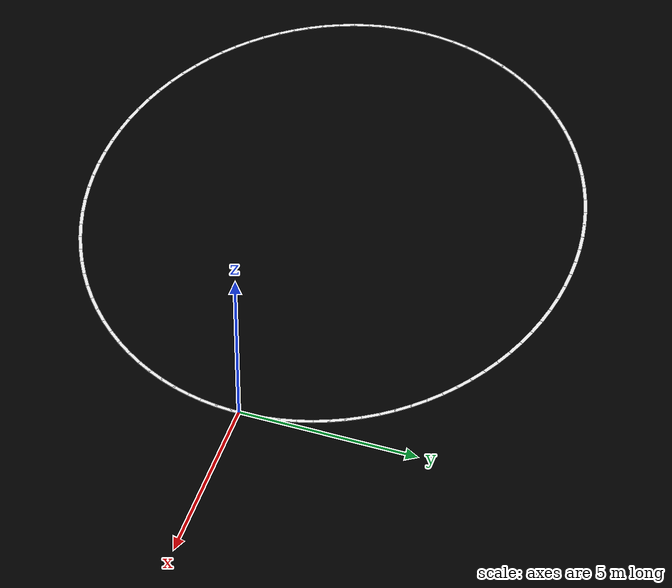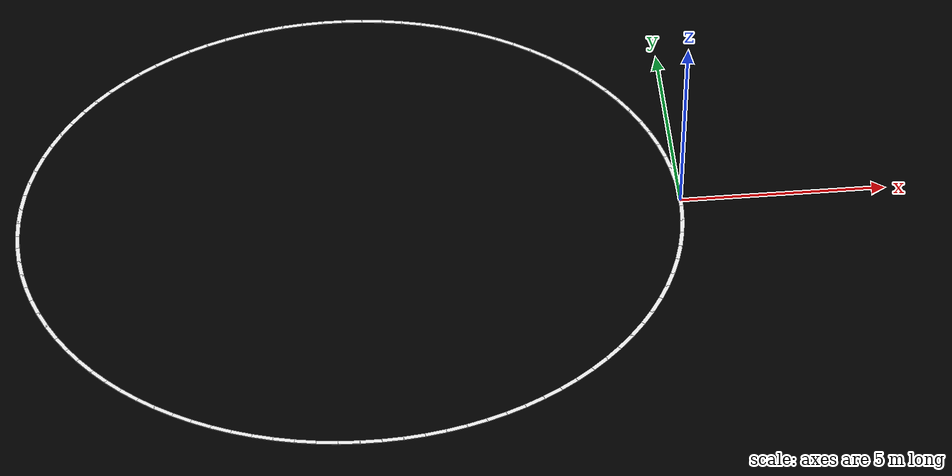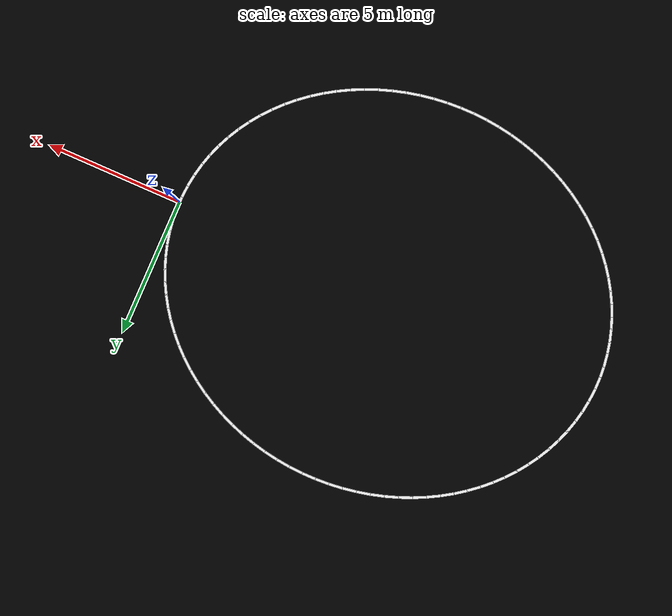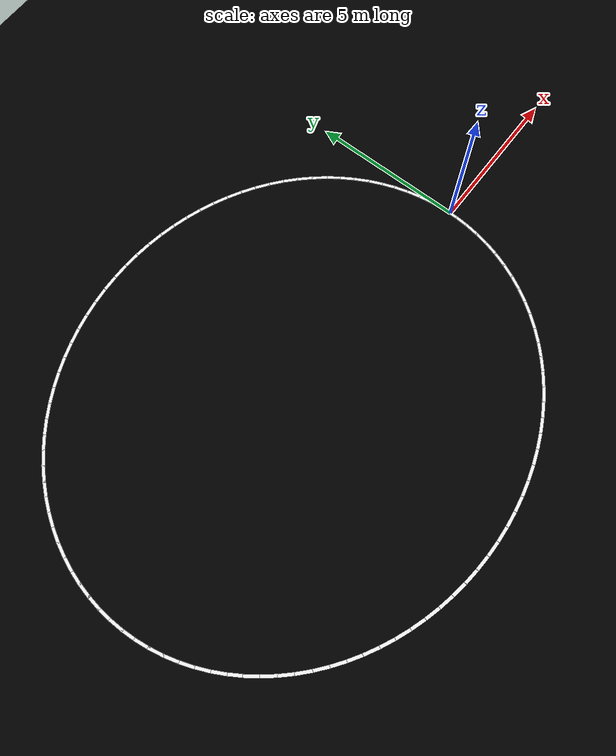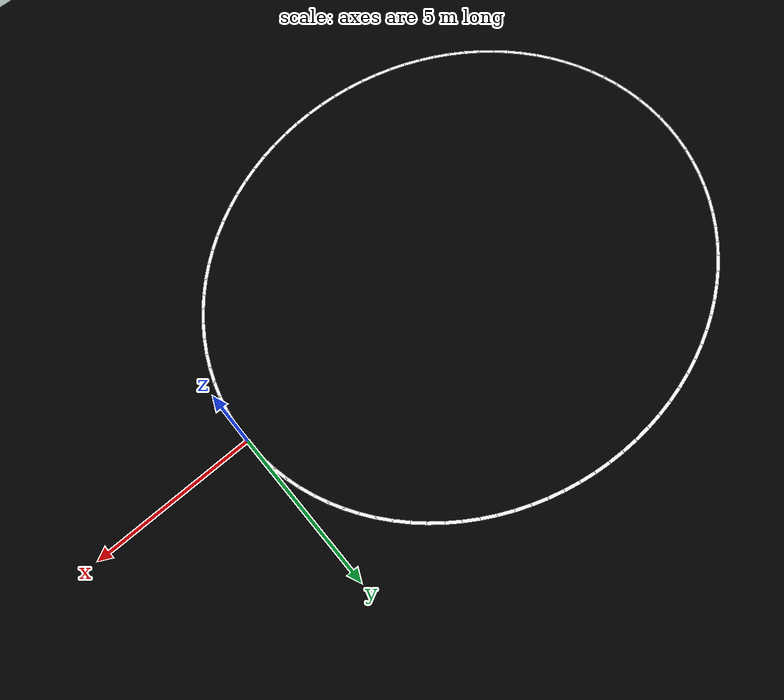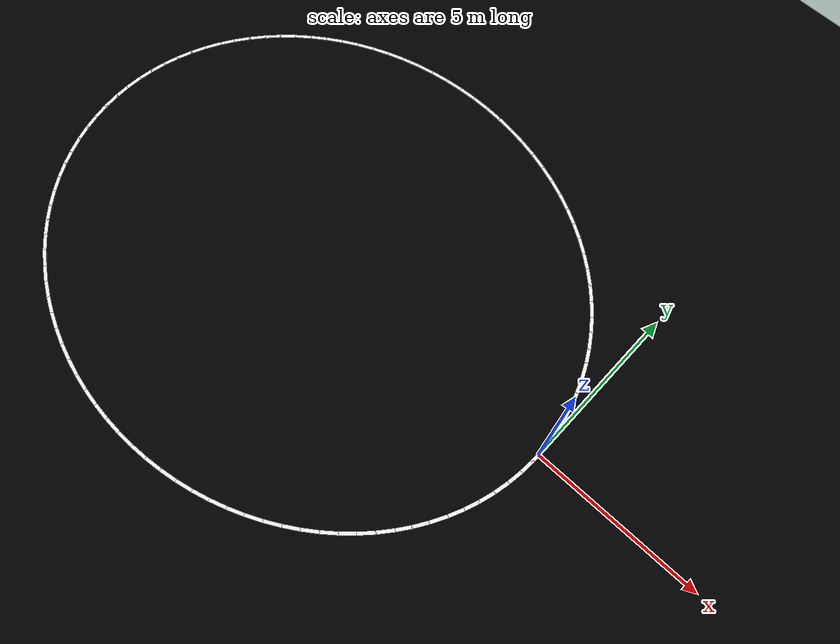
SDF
<?xml version="1.0" encoding="UTF-8"?>
<sdf version="1.9">
  <world name="line_following_track">
    <physics type="ode">
      <max_step_size>0.004</max_step_size>
      <real_time_factor>1.0</real_time_factor>
      <real_time_update_rate>250</real_time_update_rate>
    </physics>
    <gravity>0 0 -9.8</gravity>
    <magnetic_field>6e-06 2.3e-05 -4.2e-05</magnetic_field>
    <atmosphere type="adiabatic"/>
    <scene>
      <grid>false</grid>
      <ambient>0.4 0.4 0.4 1</ambient>
      <background>0.7 0.7 0.7 1</background>
      <shadows>true</shadows>
    </scene>

    <model name="ground_plane">
      <static>true</static>
      <link name="link">
        <collision name="collision">
          <geometry>
            <plane>
              <normal>0 0 1</normal>
              <size>1 1</size>
            </plane>
          </geometry>
          <surface>
            <friction>
              <ode/>
            </friction>
            <bounce/>
            <contact/>
          </surface>
        </collision>
        <visual name="visual">
          <geometry>
            <plane>
              <normal>0 0 1</normal>
              <size>500 500</size>
            </plane>
          </geometry>
          <material>
            <ambient>0 0 0 1</ambient>
            <diffuse>0 0 0 1</diffuse>
          </material>
        </visual>
        <pose>0 0 0 0 -0 0</pose>
        <inertial>
          <pose>0 0 0 0 -0 0</pose>
          <mass>1</mass>
          <inertia>
            <ixx>1</ixx>
            <ixy>0</ixy>
            <ixz>0</ixz>
            <iyy>1</iyy>
            <iyz>0</iyz>
            <izz>1</izz>
          </inertia>
        </inertial>
        <enable_wind>false</enable_wind>
      </link>
      <pose>0 0 0 0 -0 0</pose>
      <self_collide>false</self_collide>
    </model>

    <model name="track_seg_00"><static>true</static><link name="link"><visual name="visual"><geometry><box><size>0.5 0.1 0.01</size></box></geometry><material><ambient>1 1 1 1</ambient><diffuse>1 1 1 1</diffuse></material><pose>0.000 0.000 0.005 0 0 1.571</pose></visual></link></model>
    <model name="track_seg_01"><static>true</static><link name="link"><visual name="visual"><geometry><box><size>0.5 0.1 0.01</size></box></geometry><material><ambient>1 1 1 1</ambient><diffuse>1 1 1 1</diffuse></material><pose>-0.016 0.440 0.005 0 0 1.643</pose></visual></link></model>
    <model name="track_seg_02"><static>true</static><link name="link"><visual name="visual"><geometry><box><size>0.5 0.1 0.01</size></box></geometry><material><ambient>1 1 1 1</ambient><diffuse>1 1 1 1</diffuse></material><pose>-0.063 0.877 0.005 0 0 1.714</pose></visual></link></model>
    <model name="track_seg_03"><static>true</static><link name="link"><visual name="visual"><geometry><box><size>0.5 0.1 0.01</size></box></geometry><material><ambient>1 1 1 1</ambient><diffuse>1 1 1 1</diffuse></material><pose>-0.142 1.312 0.005 0 0 1.785</pose></visual></link></model>
    <model name="track_seg_04"><static>true</static><link name="link"><visual name="visual"><geometry><box><size>0.5 0.1 0.01</size></box></geometry><material><ambient>1 1 1 1</ambient><diffuse>1 1 1 1</diffuse></material><pose>-0.251 1.741 0.005 0 0 1.856</pose></visual></link></model>
    <model name="track_seg_05"><static>true</static><link name="link"><visual name="visual"><geometry><box><size>0.5 0.1 0.01</size></box></geometry><material><ambient>1 1 1 1</ambient><diffuse>1 1 1 1</diffuse></material><pose>-0.392 2.163 0.005 0 0 1.926</pose></visual></link></model>
    <model name="track_seg_06"><static>true</static><link name="link"><visual name="visual"><geometry><box><size>0.5 0.1 0.01</size></box></geometry><material><ambient>1 1 1 1</ambient><diffuse>1 1 1 1</diffuse></material><pose>-0.562 2.577 0.005 0 0 1.996</pose></visual></link></model>
    <model name="track_seg_07"><static>true</static><link name="link"><visual name="visual"><geometry><box><size>0.5 0.1 0.01</size></box></geometry><material><ambient>1 1 1 1</ambient><diffuse>1 1 1 1</diffuse></material><pose>-0.761 2.980 0.005 0 0 2.064</pose></visual></link></model>
    <model name="track_seg_08"><static>true</static><link name="link"><visual name="visual"><geometry><box><size>0.5 0.1 0.01</size></box></geometry><material><ambient>1 1 1 1</ambient><diffuse>1 1 1 1</diffuse></material><pose>-0.990 3.372 0.005 0 0 2.132</pose></visual></link></model>
    <model name="track_seg_09"><static>true</static><link name="link"><visual name="visual"><geometry><box><size>0.5 0.1 0.01</size></box></geometry><material><ambient>1 1 1 1</ambient><diffuse>1 1 1 1</diffuse></material><pose>-1.245 3.751 0.005 0 0 2.198</pose></visual></link></model>
    <model name="track_seg_10"><static>true</static><link name="link"><visual name="visual"><geometry><box><size>0.5 0.1 0.01</size></box></geometry><material><ambient>1 1 1 1</ambient><diffuse>1 1 1 1</diffuse></material><pose>-1.528 4.114 0.005 0 0 2.264</pose></visual></link></model>
    <model name="track_seg_11"><static>true</static><link name="link"><visual name="visual"><geometry><box><size>0.5 0.1 0.01</size></box></geometry><material><ambient>1 1 1 1</ambient><diffuse>1 1 1 1</diffuse></material><pose>-1.836 4.462 0.005 0 0 2.328</pose></visual></link></model>
    <model name="track_seg_12"><static>true</static><link name="link"><visual name="visual"><geometry><box><size>0.5 0.1 0.01</size></box></geometry><material><ambient>1 1 1 1</ambient><diffuse>1 1 1 1</diffuse></material><pose>-2.168 4.792 0.005 0 0 2.391</pose></visual></link></model>
    <model name="track_seg_13"><static>true</static><link name="link"><visual name="visual"><geometry><box><size>0.5 0.1 0.01</size></box></geometry><material><ambient>1 1 1 1</ambient><diffuse>1 1 1 1</diffuse></material><pose>-2.524 5.103 0.005 0 0 2.454</pose></visual></link></model>
    <model name="track_seg_14"><static>true</static><link name="link"><visual name="visual"><geometry><box><size>0.5 0.1 0.01</size></box></geometry><material><ambient>1 1 1 1</ambient><diffuse>1 1 1 1</diffuse></material><pose>-2.901 5.394 0.005 0 0 2.515</pose></visual></link></model>
    <model name="track_seg_15"><static>true</static><link name="link"><visual name="visual"><geometry><box><size>0.5 0.1 0.01</size></box></geometry><material><ambient>1 1 1 1</ambient><diffuse>1 1 1 1</diffuse></material><pose>-3.298 5.663 0.005 0 0 2.575</pose></visual></link></model>
    <model name="track_seg_16"><static>true</static><link name="link"><visual name="visual"><geometry><box><size>0.5 0.1 0.01</size></box></geometry><material><ambient>1 1 1 1</ambient><diffuse>1 1 1 1</diffuse></material><pose>-3.713 5.910 0.005 0 0 2.635</pose></visual></link></model>
    <model name="track_seg_17"><static>true</static><link name="link"><visual name="visual"><geometry><box><size>0.5 0.1 0.01</size></box></geometry><material><ambient>1 1 1 1</ambient><diffuse>1 1 1 1</diffuse></material><pose>-4.146 6.134 0.005 0 0 2.693</pose></visual></link></model>
    <model name="track_seg_18"><static>true</static><link name="link"><visual name="visual"><geometry><box><size>0.5 0.1 0.01</size></box></geometry><material><ambient>1 1 1 1</ambient><diffuse>1 1 1 1</diffuse></material><pose>-4.594 6.334 0.005 0 0 2.751</pose></visual></link></model>
    <model name="track_seg_19"><static>true</static><link name="link"><visual name="visual"><geometry><box><size>0.5 0.1 0.01</size></box></geometry><material><ambient>1 1 1 1</ambient><diffuse>1 1 1 1</diffuse></material><pose>-5.055 6.508 0.005 0 0 2.808</pose></visual></link></model>
    <model name="track_seg_20"><static>true</static><link name="link"><visual name="visual"><geometry><box><size>0.5 0.1 0.01</size></box></geometry><material><ambient>1 1 1 1</ambient><diffuse>1 1 1 1</diffuse></material><pose>-5.528 6.657 0.005 0 0 2.865</pose></visual></link></model>
    <model name="track_seg_21"><static>true</static><link name="link"><visual name="visual"><geometry><box><size>0.5 0.1 0.01</size></box></geometry><material><ambient>1 1 1 1</ambient><diffuse>1 1 1 1</diffuse></material><pose>-6.010 6.780 0.005 0 0 2.921</pose></visual></link></model>
    <model name="track_seg_22"><static>true</static><link name="link"><visual name="visual"><geometry><box><size>0.5 0.1 0.01</size></box></geometry><material><ambient>1 1 1 1</ambient><diffuse>1 1 1 1</diffuse></material><pose>-6.501 6.876 0.005 0 0 2.976</pose></visual></link></model>
    <model name="track_seg_23"><static>true</static><link name="link"><visual name="visual"><geometry><box><size>0.5 0.1 0.01</size></box></geometry><material><ambient>1 1 1 1</ambient><diffuse>1 1 1 1</diffuse></material><pose>-6.997 6.945 0.005 0 0 3.032</pose></visual></link></model>
    <model name="track_seg_24"><static>true</static><link name="link"><visual name="visual"><geometry><box><size>0.5 0.1 0.01</size></box></geometry><material><ambient>1 1 1 1</ambient><diffuse>1 1 1 1</diffuse></material><pose>-7.498 6.986 0.005 0 0 3.087</pose></visual></link></model>
    <model name="track_seg_25"><static>true</static><link name="link"><visual name="visual"><geometry><box><size>0.5 0.1 0.01</size></box></geometry><material><ambient>1 1 1 1</ambient><diffuse>1 1 1 1</diffuse></material><pose>-8.000 7.000 0.005 0 0 3.142</pose></visual></link></model>
    <model name="track_seg_26"><static>true</static><link name="link"><visual name="visual"><geometry><box><size>0.5 0.1 0.01</size></box></geometry><material><ambient>1 1 1 1</ambient><diffuse>1 1 1 1</diffuse></material><pose>-8.502 6.986 0.005 0 0 -3.087</pose></visual></link></model>
    <model name="track_seg_27"><static>true</static><link name="link"><visual name="visual"><geometry><box><size>0.5 0.1 0.01</size></box></geometry><material><ambient>1 1 1 1</ambient><diffuse>1 1 1 1</diffuse></material><pose>-9.003 6.945 0.005 0 0 -3.032</pose></visual></link></model>
    <model name="track_seg_28"><static>true</static><link name="link"><visual name="visual"><geometry><box><size>0.5 0.1 0.01</size></box></geometry><material><ambient>1 1 1 1</ambient><diffuse>1 1 1 1</diffuse></material><pose>-9.499 6.876 0.005 0 0 -2.976</pose></visual></link></model>
    <model name="track_seg_29"><static>true</static><link name="link"><visual name="visual"><geometry><box><size>0.5 0.1 0.01</size></box></geometry><material><ambient>1 1 1 1</ambient><diffuse>1 1 1 1</diffuse></material><pose>-9.990 6.780 0.005 0 0 -2.921</pose></visual></link></model>
    <model name="track_seg_30"><static>true</static><link name="link"><visual name="visual"><geometry><box><size>0.5 0.1 0.01</size></box></geometry><material><ambient>1 1 1 1</ambient><diffuse>1 1 1 1</diffuse></material><pose>-10.472 6.657 0.005 0 0 -2.865</pose></visual></link></model>
    <model name="track_seg_31"><static>true</static><link name="link"><visual name="visual"><geometry><box><size>0.5 0.1 0.01</size></box></geometry><material><ambient>1 1 1 1</ambient><diffuse>1 1 1 1</diffuse></material><pose>-10.945 6.508 0.005 0 0 -2.808</pose></visual></link></model>
    <model name="track_seg_32"><static>true</static><link name="link"><visual name="visual"><geometry><box><size>0.5 0.1 0.01</size></box></geometry><material><ambient>1 1 1 1</ambient><diffuse>1 1 1 1</diffuse></material><pose>-11.406 6.334 0.005 0 0 -2.751</pose></visual></link></model>
    <model name="track_seg_33"><static>true</static><link name="link"><visual name="visual"><geometry><box><size>0.5 0.1 0.01</size></box></geometry><material><ambient>1 1 1 1</ambient><diffuse>1 1 1 1</diffuse></material><pose>-11.854 6.134 0.005 0 0 -2.693</pose></visual></link></model>
    <model name="track_seg_34"><static>true</static><link name="link"><visual name="visual"><geometry><box><size>0.5 0.1 0.01</size></box></geometry><material><ambient>1 1 1 1</ambient><diffuse>1 1 1 1</diffuse></material><pose>-12.287 5.910 0.005 0 0 -2.635</pose></visual></link></model>
    <model name="track_seg_35"><static>true</static><link name="link"><visual name="visual"><geometry><box><size>0.5 0.1 0.01</size></box></geometry><material><ambient>1 1 1 1</ambient><diffuse>1 1 1 1</diffuse></material><pose>-12.702 5.663 0.005 0 0 -2.575</pose></visual></link></model>
    <model name="track_seg_36"><static>true</static><link name="link"><visual name="visual"><geometry><box><size>0.5 0.1 0.01</size></box></geometry><material><ambient>1 1 1 1</ambient><diffuse>1 1 1 1</diffuse></material><pose>-13.099 5.394 0.005 0 0 -2.515</pose></visual></link></model>
    <model name="track_seg_37"><static>true</static><link name="link"><visual name="visual"><geometry><box><size>0.5 0.1 0.01</size></box></geometry><material><ambient>1 1 1 1</ambient><diffuse>1 1 1 1</diffuse></material><pose>-13.476 5.103 0.005 0 0 -2.454</pose></visual></link></model>
    <model name="track_seg_38"><static>true</static><link name="link"><visual name="visual"><geometry><box><size>0.5 0.1 0.01</size></box></geometry><material><ambient>1 1 1 1</ambient><diffuse>1 1 1 1</diffuse></material><pose>-13.832 4.792 0.005 0 0 -2.391</pose></visual></link></model>
    <model name="track_seg_39"><static>true</static><link name="link"><visual name="visual"><geometry><box><size>0.5 0.1 0.01</size></box></geometry><material><ambient>1 1 1 1</ambient><diffuse>1 1 1 1</diffuse></material><pose>-14.164 4.462 0.005 0 0 -2.328</pose></visual></link></model>
    <model name="track_seg_40"><static>true</static><link name="link"><visual name="visual"><geometry><box><size>0.5 0.1 0.01</size></box></geometry><material><ambient>1 1 1 1</ambient><diffuse>1 1 1 1</diffuse></material><pose>-14.472 4.114 0.005 0 0 -2.264</pose></visual></link></model>
    <model name="track_seg_41"><static>true</static><link name="link"><visual name="visual"><geometry><box><size>0.5 0.1 0.01</size></box></geometry><material><ambient>1 1 1 1</ambient><diffuse>1 1 1 1</diffuse></material><pose>-14.755 3.751 0.005 0 0 -2.198</pose></visual></link></model>
    <model name="track_seg_42"><static>true</static><link name="link"><visual name="visual"><geometry><box><size>0.5 0.1 0.01</size></box></geometry><material><ambient>1 1 1 1</ambient><diffuse>1 1 1 1</diffuse></material><pose>-15.010 3.372 0.005 0 0 -2.132</pose></visual></link></model>
    <model name="track_seg_43"><static>true</static><link name="link"><visual name="visual"><geometry><box><size>0.5 0.1 0.01</size></box></geometry><material><ambient>1 1 1 1</ambient><diffuse>1 1 1 1</diffuse></material><pose>-15.239 2.980 0.005 0 0 -2.064</pose></visual></link></model>
    <model name="track_seg_44"><static>true</static><link name="link"><visual name="visual"><geometry><box><size>0.5 0.1 0.01</size></box></geometry><material><ambient>1 1 1 1</ambient><diffuse>1 1 1 1</diffuse></material><pose>-15.438 2.577 0.005 0 0 -1.996</pose></visual></link></model>
    <model name="track_seg_45"><static>true</static><link name="link"><visual name="visual"><geometry><box><size>0.5 0.1 0.01</size></box></geometry><material><ambient>1 1 1 1</ambient><diffuse>1 1 1 1</diffuse></material><pose>-15.608 2.163 0.005 0 0 -1.926</pose></visual></link></model>
    <model name="track_seg_46"><static>true</static><link name="link"><visual name="visual"><geometry><box><size>0.5 0.1 0.01</size></box></geometry><material><ambient>1 1 1 1</ambient><diffuse>1 1 1 1</diffuse></material><pose>-15.749 1.741 0.005 0 0 -1.856</pose></visual></link></model>
    <model name="track_seg_47"><static>true</static><link name="link"><visual name="visual"><geometry><box><size>0.5 0.1 0.01</size></box></geometry><material><ambient>1 1 1 1</ambient><diffuse>1 1 1 1</diffuse></material><pose>-15.858 1.312 0.005 0 0 -1.785</pose></visual></link></model>
    <model name="track_seg_48"><static>true</static><link name="link"><visual name="visual"><geometry><box><size>0.5 0.1 0.01</size></box></geometry><material><ambient>1 1 1 1</ambient><diffuse>1 1 1 1</diffuse></material><pose>-15.937 0.877 0.005 0 0 -1.714</pose></visual></link></model>
    <model name="track_seg_49"><static>true</static><link name="link"><visual name="visual"><geometry><box><size>0.5 0.1 0.01</size></box></geometry><material><ambient>1 1 1 1</ambient><diffuse>1 1 1 1</diffuse></material><pose>-15.984 0.440 0.005 0 0 -1.643</pose></visual></link></model>
    <model name="track_seg_50"><static>true</static><link name="link"><visual name="visual"><geometry><box><size>0.5 0.1 0.01</size></box></geometry><material><ambient>1 1 1 1</ambient><diffuse>1 1 1 1</diffuse></material><pose>-16.000 0.000 0.005 0 0 -1.571</pose></visual></link></model>
    <model name="track_seg_51"><static>true</static><link name="link"><visual name="visual"><geometry><box><size>0.5 0.1 0.01</size></box></geometry><material><ambient>1 1 1 1</ambient><diffuse>1 1 1 1</diffuse></material><pose>-15.984 -0.440 0.005 0 0 -1.499</pose></visual></link></model>
    <model name="track_seg_52"><static>true</static><link name="link"><visual name="visual"><geometry><box><size>0.5 0.1 0.01</size></box></geometry><material><ambient>1 1 1 1</ambient><diffuse>1 1 1 1</diffuse></material><pose>-15.937 -0.877 0.005 0 0 -1.427</pose></visual></link></model>
    <model name="track_seg_53"><static>true</static><link name="link"><visual name="visual"><geometry><box><size>0.5 0.1 0.01</size></box></geometry><material><ambient>1 1 1 1</ambient><diffuse>1 1 1 1</diffuse></material><pose>-15.858 -1.312 0.005 0 0 -1.356</pose></visual></link></model>
    <model name="track_seg_54"><static>true</static><link name="link"><visual name="visual"><geometry><box><size>0.5 0.1 0.01</size></box></geometry><material><ambient>1 1 1 1</ambient><diffuse>1 1 1 1</diffuse></material><pose>-15.749 -1.741 0.005 0 0 -1.285</pose></visual></link></model>
    <model name="track_seg_55"><static>true</static><link name="link"><visual name="visual"><geometry><box><size>0.5 0.1 0.01</size></box></geometry><material><ambient>1 1 1 1</ambient><diffuse>1 1 1 1</diffuse></material><pose>-15.608 -2.163 0.005 0 0 -1.215</pose></visual></link></model>
    <model name="track_seg_56"><static>true</static><link name="link"><visual name="visual"><geometry><box><size>0.5 0.1 0.01</size></box></geometry><material><ambient>1 1 1 1</ambient><diffuse>1 1 1 1</diffuse></material><pose>-15.438 -2.577 0.005 0 0 -1.146</pose></visual></link></model>
    <model name="track_seg_57"><static>true</static><link name="link"><visual name="visual"><geometry><box><size>0.5 0.1 0.01</size></box></geometry><material><ambient>1 1 1 1</ambient><diffuse>1 1 1 1</diffuse></material><pose>-15.239 -2.980 0.005 0 0 -1.077</pose></visual></link></model>
    <model name="track_seg_58"><static>true</static><link name="link"><visual name="visual"><geometry><box><size>0.5 0.1 0.01</size></box></geometry><material><ambient>1 1 1 1</ambient><diffuse>1 1 1 1</diffuse></material><pose>-15.010 -3.372 0.005 0 0 -1.010</pose></visual></link></model>
    <model name="track_seg_59"><static>true</static><link name="link"><visual name="visual"><geometry><box><size>0.5 0.1 0.01</size></box></geometry><material><ambient>1 1 1 1</ambient><diffuse>1 1 1 1</diffuse></material><pose>-14.755 -3.751 0.005 0 0 -0.943</pose></visual></link></model>
    <model name="track_seg_60"><static>true</static><link name="link"><visual name="visual"><geometry><box><size>0.5 0.1 0.01</size></box></geometry><material><ambient>1 1 1 1</ambient><diffuse>1 1 1 1</diffuse></material><pose>-14.472 -4.114 0.005 0 0 -0.878</pose></visual></link></model>
    <model name="track_seg_61"><static>true</static><link name="link"><visual name="visual"><geometry><box><size>0.5 0.1 0.01</size></box></geometry><material><ambient>1 1 1 1</ambient><diffuse>1 1 1 1</diffuse></material><pose>-14.164 -4.462 0.005 0 0 -0.813</pose></visual></link></model>
    <model name="track_seg_62"><static>true</static><link name="link"><visual name="visual"><geometry><box><size>0.5 0.1 0.01</size></box></geometry><material><ambient>1 1 1 1</ambient><diffuse>1 1 1 1</diffuse></material><pose>-13.832 -4.792 0.005 0 0 -0.750</pose></visual></link></model>
    <model name="track_seg_63"><static>true</static><link name="link"><visual name="visual"><geometry><box><size>0.5 0.1 0.01</size></box></geometry><material><ambient>1 1 1 1</ambient><diffuse>1 1 1 1</diffuse></material><pose>-13.476 -5.103 0.005 0 0 -0.688</pose></visual></link></model>
    <model name="track_seg_64"><static>true</static><link name="link"><visual name="visual"><geometry><box><size>0.5 0.1 0.01</size></box></geometry><material><ambient>1 1 1 1</ambient><diffuse>1 1 1 1</diffuse></material><pose>-13.099 -5.394 0.005 0 0 -0.627</pose></visual></link></model>
    <model name="track_seg_65"><static>true</static><link name="link"><visual name="visual"><geometry><box><size>0.5 0.1 0.01</size></box></geometry><material><ambient>1 1 1 1</ambient><diffuse>1 1 1 1</diffuse></material><pose>-12.702 -5.663 0.005 0 0 -0.566</pose></visual></link></model>
    <model name="track_seg_66"><static>true</static><link name="link"><visual name="visual"><geometry><box><size>0.5 0.1 0.01</size></box></geometry><material><ambient>1 1 1 1</ambient><diffuse>1 1 1 1</diffuse></material><pose>-12.287 -5.910 0.005 0 0 -0.507</pose></visual></link></model>
    <model name="track_seg_67"><static>true</static><link name="link"><visual name="visual"><geometry><box><size>0.5 0.1 0.01</size></box></geometry><material><ambient>1 1 1 1</ambient><diffuse>1 1 1 1</diffuse></material><pose>-11.854 -6.134 0.005 0 0 -0.448</pose></visual></link></model>
    <model name="track_seg_68"><static>true</static><link name="link"><visual name="visual"><geometry><box><size>0.5 0.1 0.01</size></box></geometry><material><ambient>1 1 1 1</ambient><diffuse>1 1 1 1</diffuse></material><pose>-11.406 -6.334 0.005 0 0 -0.391</pose></visual></link></model>
    <model name="track_seg_69"><static>true</static><link name="link"><visual name="visual"><geometry><box><size>0.5 0.1 0.01</size></box></geometry><material><ambient>1 1 1 1</ambient><diffuse>1 1 1 1</diffuse></material><pose>-10.945 -6.508 0.005 0 0 -0.333</pose></visual></link></model>
    <model name="track_seg_70"><static>true</static><link name="link"><visual name="visual"><geometry><box><size>0.5 0.1 0.01</size></box></geometry><material><ambient>1 1 1 1</ambient><diffuse>1 1 1 1</diffuse></material><pose>-10.472 -6.657 0.005 0 0 -0.277</pose></visual></link></model>
    <model name="track_seg_71"><static>true</static><link name="link"><visual name="visual"><geometry><box><size>0.5 0.1 0.01</size></box></geometry><material><ambient>1 1 1 1</ambient><diffuse>1 1 1 1</diffuse></material><pose>-9.990 -6.780 0.005 0 0 -0.221</pose></visual></link></model>
    <model name="track_seg_72"><static>true</static><link name="link"><visual name="visual"><geometry><box><size>0.5 0.1 0.01</size></box></geometry><material><ambient>1 1 1 1</ambient><diffuse>1 1 1 1</diffuse></material><pose>-9.499 -6.876 0.005 0 0 -0.165</pose></visual></link></model>
    <model name="track_seg_73"><static>true</static><link name="link"><visual name="visual"><geometry><box><size>0.5 0.1 0.01</size></box></geometry><material><ambient>1 1 1 1</ambient><diffuse>1 1 1 1</diffuse></material><pose>-9.003 -6.945 0.005 0 0 -0.110</pose></visual></link></model>
    <model name="track_seg_74"><static>true</static><link name="link"><visual name="visual"><geometry><box><size>0.5 0.1 0.01</size></box></geometry><material><ambient>1 1 1 1</ambient><diffuse>1 1 1 1</diffuse></material><pose>-8.502 -6.986 0.005 0 0 -0.055</pose></visual></link></model>
    <model name="track_seg_75"><static>true</static><link name="link"><visual name="visual"><geometry><box><size>0.5 0.1 0.01</size></box></geometry><material><ambient>1 1 1 1</ambient><diffuse>1 1 1 1</diffuse></material><pose>-8.000 -7.000 0.005 0 0 -0.000</pose></visual></link></model>
    <model name="track_seg_76"><static>true</static><link name="link"><visual name="visual"><geometry><box><size>0.5 0.1 0.01</size></box></geometry><material><ambient>1 1 1 1</ambient><diffuse>1 1 1 1</diffuse></material><pose>-7.498 -6.986 0.005 0 0 0.055</pose></visual></link></model>
    <model name="track_seg_77"><static>true</static><link name="link"><visual name="visual"><geometry><box><size>0.5 0.1 0.01</size></box></geometry><material><ambient>1 1 1 1</ambient><diffuse>1 1 1 1</diffuse></material><pose>-6.997 -6.945 0.005 0 0 0.110</pose></visual></link></model>
    <model name="track_seg_78"><static>true</static><link name="link"><visual name="visual"><geometry><box><size>0.5 0.1 0.01</size></box></geometry><material><ambient>1 1 1 1</ambient><diffuse>1 1 1 1</diffuse></material><pose>-6.501 -6.876 0.005 0 0 0.165</pose></visual></link></model>
    <model name="track_seg_79"><static>true</static><link name="link"><visual name="visual"><geometry><box><size>0.5 0.1 0.01</size></box></geometry><material><ambient>1 1 1 1</ambient><diffuse>1 1 1 1</diffuse></material><pose>-6.010 -6.780 0.005 0 0 0.221</pose></visual></link></model>
    <model name="track_seg_80"><static>true</static><link name="link"><visual name="visual"><geometry><box><size>0.5 0.1 0.01</size></box></geometry><material><ambient>1 1 1 1</ambient><diffuse>1 1 1 1</diffuse></material><pose>-5.528 -6.657 0.005 0 0 0.277</pose></visual></link></model>
    <model name="track_seg_81"><static>true</static><link name="link"><visual name="visual"><geometry><box><size>0.5 0.1 0.01</size></box></geometry><material><ambient>1 1 1 1</ambient><diffuse>1 1 1 1</diffuse></material><pose>-5.055 -6.508 0.005 0 0 0.333</pose></visual></link></model>
    <model name="track_seg_82"><static>true</static><link name="link"><visual name="visual"><geometry><box><size>0.5 0.1 0.01</size></box></geometry><material><ambient>1 1 1 1</ambient><diffuse>1 1 1 1</diffuse></material><pose>-4.594 -6.334 0.005 0 0 0.391</pose></visual></link></model>
    <model name="track_seg_83"><static>true</static><link name="link"><visual name="visual"><geometry><box><size>0.5 0.1 0.01</size></box></geometry><material><ambient>1 1 1 1</ambient><diffuse>1 1 1 1</diffuse></material><pose>-4.146 -6.134 0.005 0 0 0.448</pose></visual></link></model>
    <model name="track_seg_84"><static>true</static><link name="link"><visual name="visual"><geometry><box><size>0.5 0.1 0.01</size></box></geometry><material><ambient>1 1 1 1</ambient><diffuse>1 1 1 1</diffuse></material><pose>-3.713 -5.910 0.005 0 0 0.507</pose></visual></link></model>
    <model name="track_seg_85"><static>true</static><link name="link"><visual name="visual"><geometry><box><size>0.5 0.1 0.01</size></box></geometry><material><ambient>1 1 1 1</ambient><diffuse>1 1 1 1</diffuse></material><pose>-3.298 -5.663 0.005 0 0 0.566</pose></visual></link></model>
    <model name="track_seg_86"><static>true</static><link name="link"><visual name="visual"><geometry><box><size>0.5 0.1 0.01</size></box></geometry><material><ambient>1 1 1 1</ambient><diffuse>1 1 1 1</diffuse></material><pose>-2.901 -5.394 0.005 0 0 0.627</pose></visual></link></model>
    <model name="track_seg_87"><static>true</static><link name="link"><visual name="visual"><geometry><box><size>0.5 0.1 0.01</size></box></geometry><material><ambient>1 1 1 1</ambient><diffuse>1 1 1 1</diffuse></material><pose>-2.524 -5.103 0.005 0 0 0.688</pose></visual></link></model>
    <model name="track_seg_88"><static>true</static><link name="link"><visual name="visual"><geometry><box><size>0.5 0.1 0.01</size></box></geometry><material><ambient>1 1 1 1</ambient><diffuse>1 1 1 1</diffuse></material><pose>-2.168 -4.792 0.005 0 0 0.750</pose></visual></link></model>
    <model name="track_seg_89"><static>true</static><link name="link"><visual name="visual"><geometry><box><size>0.5 0.1 0.01</size></box></geometry><material><ambient>1 1 1 1</ambient><diffuse>1 1 1 1</diffuse></material><pose>-1.836 -4.462 0.005 0 0 0.813</pose></visual></link></model>
    <model name="track_seg_90"><static>true</static><link name="link"><visual name="visual"><geometry><box><size>0.5 0.1 0.01</size></box></geometry><material><ambient>1 1 1 1</ambient><diffuse>1 1 1 1</diffuse></material><pose>-1.528 -4.114 0.005 0 0 0.878</pose></visual></link></model>
    <model name="track_seg_91"><static>true</static><link name="link"><visual name="visual"><geometry><box><size>0.5 0.1 0.01</size></box></geometry><material><ambient>1 1 1 1</ambient><diffuse>1 1 1 1</diffuse></material><pose>-1.245 -3.751 0.005 0 0 0.943</pose></visual></link></model>
    <model name="track_seg_92"><static>true</static><link name="link"><visual name="visual"><geometry><box><size>0.5 0.1 0.01</size></box></geometry><material><ambient>1 1 1 1</ambient><diffuse>1 1 1 1</diffuse></material><pose>-0.990 -3.372 0.005 0 0 1.010</pose></visual></link></model>
    <model name="track_seg_93"><static>true</static><link name="link"><visual name="visual"><geometry><box><size>0.5 0.1 0.01</size></box></geometry><material><ambient>1 1 1 1</ambient><diffuse>1 1 1 1</diffuse></material><pose>-0.761 -2.980 0.005 0 0 1.077</pose></visual></link></model>
    <model name="track_seg_94"><static>true</static><link name="link"><visual name="visual"><geometry><box><size>0.5 0.1 0.01</size></box></geometry><material><ambient>1 1 1 1</ambient><diffuse>1 1 1 1</diffuse></material><pose>-0.562 -2.577 0.005 0 0 1.146</pose></visual></link></model>
    <model name="track_seg_95"><static>true</static><link name="link"><visual name="visual"><geometry><box><size>0.5 0.1 0.01</size></box></geometry><material><ambient>1 1 1 1</ambient><diffuse>1 1 1 1</diffuse></material><pose>-0.392 -2.163 0.005 0 0 1.215</pose></visual></link></model>
    <model name="track_seg_96"><static>true</static><link name="link"><visual name="visual"><geometry><box><size>0.5 0.1 0.01</size></box></geometry><material><ambient>1 1 1 1</ambient><diffuse>1 1 1 1</diffuse></material><pose>-0.251 -1.741 0.005 0 0 1.285</pose></visual></link></model>
    <model name="track_seg_97"><static>true</static><link name="link"><visual name="visual"><geometry><box><size>0.5 0.1 0.01</size></box></geometry><material><ambient>1 1 1 1</ambient><diffuse>1 1 1 1</diffuse></material><pose>-0.142 -1.312 0.005 0 0 1.356</pose></visual></link></model>
    <model name="track_seg_98"><static>true</static><link name="link"><visual name="visual"><geometry><box><size>0.5 0.1 0.01</size></box></geometry><material><ambient>1 1 1 1</ambient><diffuse>1 1 1 1</diffuse></material><pose>-0.063 -0.877 0.005 0 0 1.427</pose></visual></link></model>
    <model name="track_seg_99"><static>true</static><link name="link"><visual name="visual"><geometry><box><size>0.5 0.1 0.01</size></box></geometry><material><ambient>1 1 1 1</ambient><diffuse>1 1 1 1</diffuse></material><pose>-0.016 -0.440 0.005 0 0 1.499</pose></visual></link></model>

    <light name="sunUTC" type="directional">
      <pose>0 0 500 0 -0 0</pose>
      <cast_shadows>true</cast_shadows>
      <intensity>1</intensity>
      <direction>0.001 0.625 -0.78</direction>
      <diffuse>0.904 0.904 0.904 1</diffuse>
      <specular>0.271 0.271 0.271 1</specular>
      <attenuation>
        <range>2000</range>
        <linear>0</linear>
        <constant>1</constant>
        <quadratic>0</quadratic>
      </attenuation>
      <spot>
        <inner_angle>0</inner_angle>
        <outer_angle>0</outer_angle>
        <falloff>0</falloff>
      </spot>
    </light>
    <spherical_coordinates>
      <surface_model>EARTH_WGS84</surface_model>
      <world_frame_orientation>ENU</world_frame_orientation>
      <latitude_deg>47.397971057728974</latitude_deg>
      <longitude_deg> 8.546163739800146</longitude_deg>
      <elevation>0</elevation>
    </spherical_coordinates>
  </world>
</sdf>
